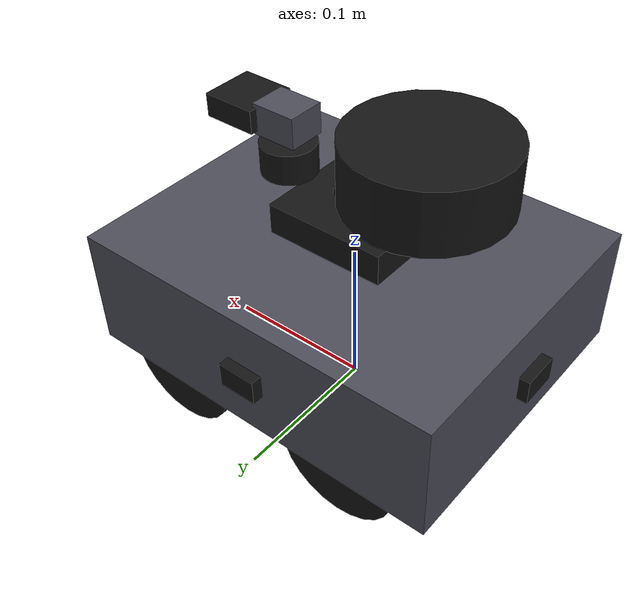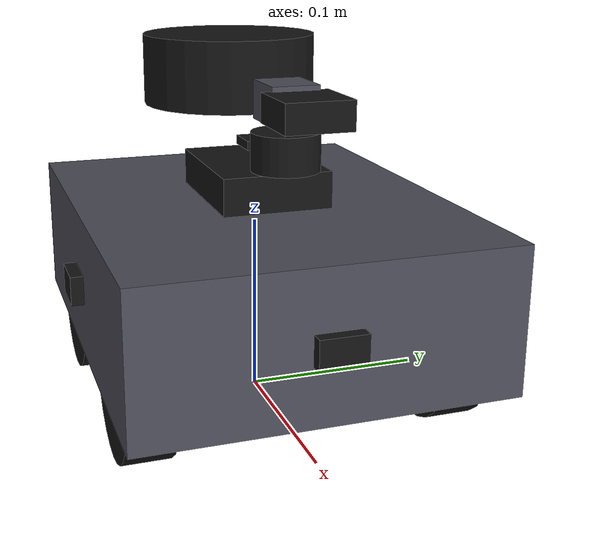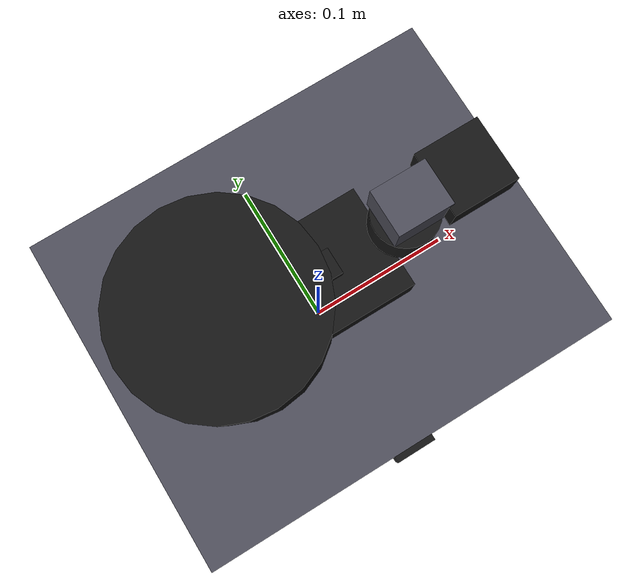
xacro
<?xml version="1.0"?>
<robot name="mecanum_chassis" xmlns:xacro="http://www.ros.org/wiki/xacro">
  <xacro:include
    filename="$(find air_ground_car_bringup)/urdf/car_base.urdf.xacro"/>

  <xacro:property name="wheel_radius" value="0.0395"/>
  <xacro:property name="wheel_width" value="0.026"/>
  <xacro:property name="wheel_mass" value="0.05"/>
  <xacro:property name="wheel_x" value="0.062"/>
  <xacro:property name="wheel_y" value="0.083"/>

  <!-- fdir_z is expressed in the wheel collision frame. After the wheel is
       rotated onto its axle, it selects a +/-45 degree ground traction line. -->
  <xacro:macro name="mecanum_wheel" params="name x y fdir_z">
    <link name="${name}_wheel">
      <inertial>
        <mass value="${wheel_mass}"/>
        <inertia
          ixx="${wheel_mass * (3.0 * wheel_radius * wheel_radius + wheel_width * wheel_width) / 12.0}"
          ixy="0"
          ixz="0"
          iyy="${wheel_mass * (3.0 * wheel_radius * wheel_radius + wheel_width * wheel_width) / 12.0}"
          iyz="0"
          izz="${wheel_mass * wheel_radius * wheel_radius / 2.0}"/>
      </inertial>
      <visual>
        <geometry>
          <cylinder radius="${wheel_radius}" length="${wheel_width}"/>
        </geometry>
        <material name="car_black"/>
      </visual>
      <collision>
        <geometry>
          <cylinder radius="${wheel_radius}" length="${wheel_width}"/>
        </geometry>
      </collision>
    </link>

    <joint name="${name}_wheel_joint" type="continuous">
      <parent link="base_link"/>
      <child link="${name}_wheel"/>
      <origin xyz="${x} ${y} ${wheel_radius}" rpy="${-pi / 2.0} 0 0"/>
      <axis xyz="0 0 1"/>
      <!-- 40 rad/s 覆盖供应资料 360±20 RPM 的空载公差上限（约 39.8 rad/s）。 -->
      <limit effort="5.0" velocity="40.0"/>
      <dynamics damping="0.02" friction="0.0"/>
    </joint>

    <transmission name="${name}_wheel_transmission">
      <type>transmission_interface/SimpleTransmission</type>
      <joint name="${name}_wheel_joint">
        <hardwareInterface>hardware_interface/VelocityJointInterface</hardwareInterface>
      </joint>
      <actuator name="${name}_wheel_motor">
        <hardwareInterface>hardware_interface/VelocityJointInterface</hardwareInterface>
        <mechanicalReduction>1</mechanicalReduction>
      </actuator>
    </transmission>

    <gazebo reference="${name}_wheel">
      <material>Gazebo/Black</material>
      <mu1>0.2</mu1>
      <mu2>0.01</mu2>
      <fdir1>0.70710678 0 ${fdir_z * 0.70710678}</fdir1>
      <kp>1000000</kp>
      <kd>10</kd>
    </gazebo>
  </xacro:macro>

  <xacro:mecanum_wheel name="front_left"
    x="${wheel_x}" y="${wheel_y}" fdir_z="1"/>
  <xacro:mecanum_wheel name="front_right"
    x="${wheel_x}" y="${-wheel_y}" fdir_z="-1"/>
  <xacro:mecanum_wheel name="rear_left"
    x="${-wheel_x}" y="${wheel_y}" fdir_z="-1"/>
  <xacro:mecanum_wheel name="rear_right"
    x="${-wheel_x}" y="${-wheel_y}" fdir_z="1"/>

  <gazebo>
    <plugin name="mecanum_planar_drive"
            filename="libmecanum_planar_drive_plugin.so">
      <robotNamespace>/car</robotNamespace>
      <commandTopic>mecanum_cmd_vel</commandTopic>
      <cmdTimeout>0.5</cmdTimeout>
    </plugin>
  </gazebo>
</robot>

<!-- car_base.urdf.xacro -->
<robot name="car_base" xmlns:xacro="http://www.ros.org/wiki/xacro">
  <xacro:include
    filename="$(find air_ground_car_bringup)/urdf/car_sensors.urdf.xacro"/>

  <xacro:property name="body_length" value="0.25"/>
  <xacro:property name="body_width" value="0.20"/>
  <xacro:property name="body_height" value="0.08"/>
  <xacro:property name="body_center_z" value="0.073"/>
  <xacro:property name="body_mass" value="2.5"/>

  <material name="car_gray">
    <color rgba="0.30 0.30 0.35 1.0"/>
  </material>
  <material name="car_black">
    <color rgba="0.08 0.08 0.08 1.0"/>
  </material>

  <!-- The model origin lies on the ground below the chassis centre. -->
  <link name="base_link">
    <inertial>
      <origin xyz="0 0 ${body_center_z}" rpy="0 0 0"/>
      <mass value="${body_mass}"/>
      <inertia
        ixx="${body_mass * (body_width * body_width + body_height * body_height) / 12.0}"
        ixy="0"
        ixz="0"
        iyy="${body_mass * (body_length * body_length + body_height * body_height) / 12.0}"
        iyz="0"
        izz="${body_mass * (body_length * body_length + body_width * body_width) / 12.0}"/>
    </inertial>
    <visual>
      <origin xyz="0 0 ${body_center_z}" rpy="0 0 0"/>
      <geometry>
        <box size="${body_length} ${body_width} ${body_height}"/>
      </geometry>
      <material name="car_gray"/>
    </visual>
    <collision>
      <origin xyz="0 0 ${body_center_z}" rpy="0 0 0"/>
      <geometry>
        <box size="${body_length} ${body_width} ${body_height}"/>
      </geometry>
    </collision>
  </link>

  <link name="sensor_mount">
    <inertial>
      <mass value="0.1"/>
      <inertia ixx="0.000033" ixy="0" ixz="0"
               iyy="0.000057" iyz="0" izz="0.000083"/>
    </inertial>
    <visual>
      <geometry>
        <box size="0.08 0.06 0.02"/>
      </geometry>
      <material name="car_black"/>
    </visual>
  </link>
  <joint name="sensor_mount_joint" type="fixed">
    <parent link="base_link"/>
    <child link="sensor_mount"/>
    <origin xyz="0 0 0.125" rpy="0 0 0"/>
  </joint>

  <gazebo reference="base_link">
    <material>Gazebo/DarkGrey</material>
  </gazebo>
  <gazebo reference="sensor_mount">
    <material>Gazebo/Black</material>
  </gazebo>

  <xacro:car_sensor_suite
    base_link="base_link" mount_link="sensor_mount"/>

  <gazebo>
    <plugin name="gazebo_ros_control" filename="libgazebo_ros_control.so">
      <robotNamespace>/car</robotNamespace>
      <robotParam>/robot_description</robotParam>
    </plugin>
  </gazebo>
</robot>

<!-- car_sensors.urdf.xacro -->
<robot xmlns:xacro="http://www.ros.org/wiki/xacro">
  <xacro:macro name="car_sensor_suite" params="base_link mount_link">
    <!-- Two-axis OpenMV gimbal. -->
    <link name="gimbal_pan_link">
      <inertial>
        <mass value="0.03"/>
        <inertia ixx="0.000008" ixy="0" ixz="0"
                 iyy="0.000008" iyz="0" izz="0.000012"/>
      </inertial>
      <visual>
        <geometry>
          <cylinder radius="0.018" length="0.020"/>
        </geometry>
        <material name="car_black"/>
      </visual>
    </link>
    <joint name="gimbal_pan_joint" type="revolute">
      <parent link="${mount_link}"/>
      <child link="gimbal_pan_link"/>
      <origin xyz="0.05 0 0.025" rpy="0 0 0"/>
      <axis xyz="0 0 1"/>
      <limit lower="${-pi / 2.0}" upper="${pi / 2.0}"
             effort="0.5" velocity="3.0"/>
      <dynamics damping="0.02" friction="0.0"/>
    </joint>

    <link name="gimbal_tilt_link">
      <inertial>
        <mass value="0.02"/>
        <inertia ixx="0.000004" ixy="0" ixz="0"
                 iyy="0.000006" iyz="0" izz="0.000006"/>
      </inertial>
      <visual>
        <geometry>
          <box size="0.030 0.025 0.020"/>
        </geometry>
        <material name="car_gray"/>
      </visual>
    </link>
    <joint name="gimbal_tilt_joint" type="revolute">
      <parent link="gimbal_pan_link"/>
      <child link="gimbal_tilt_link"/>
      <origin xyz="0 0 0.025" rpy="0 0 0"/>
      <axis xyz="0 1 0"/>
      <limit lower="${-pi / 4.0}" upper="${pi / 4.0}"
             effort="0.3" velocity="2.0"/>
      <dynamics damping="0.02" friction="0.0"/>
    </joint>

    <link name="openmv_camera_link">
      <inertial>
        <mass value="0.02"/>
        <inertia ixx="0.000004" ixy="0" ixz="0"
                 iyy="0.000004" iyz="0" izz="0.000006"/>
      </inertial>
      <visual>
        <geometry>
          <box size="0.035 0.035 0.015"/>
        </geometry>
        <material name="car_black"/>
      </visual>
    </link>
    <joint name="openmv_camera_joint" type="fixed">
      <parent link="gimbal_tilt_link"/>
      <child link="openmv_camera_link"/>
      <origin xyz="0.030 0 0" rpy="0 0 0"/>
    </joint>

    <link name="openmv_camera_optical_link"/>
    <joint name="openmv_camera_optical_joint" type="fixed">
      <parent link="openmv_camera_link"/>
      <child link="openmv_camera_optical_link"/>
      <origin xyz="0 0 0" rpy="${-pi / 2.0} 0 ${-pi / 2.0}"/>
    </joint>

    <transmission name="gimbal_pan_transmission">
      <type>transmission_interface/SimpleTransmission</type>
      <joint name="gimbal_pan_joint">
        <hardwareInterface>hardware_interface/PositionJointInterface</hardwareInterface>
      </joint>
      <actuator name="gimbal_pan_motor">
        <hardwareInterface>hardware_interface/PositionJointInterface</hardwareInterface>
        <mechanicalReduction>1</mechanicalReduction>
      </actuator>
    </transmission>
    <transmission name="gimbal_tilt_transmission">
      <type>transmission_interface/SimpleTransmission</type>
      <joint name="gimbal_tilt_joint">
        <hardwareInterface>hardware_interface/PositionJointInterface</hardwareInterface>
      </joint>
      <actuator name="gimbal_tilt_motor">
        <hardwareInterface>hardware_interface/PositionJointInterface</hardwareInterface>
        <mechanicalReduction>1</mechanicalReduction>
      </actuator>
    </transmission>

    <link name="lidar_link">
      <inertial>
        <mass value="0.17"/>
        <inertia ixx="0.000115" ixy="0" ixz="0"
                 iyy="0.000115" iyz="0" izz="0.000213"/>
      </inertial>
      <visual>
        <geometry>
          <cylinder radius="0.05" length="0.04"/>
        </geometry>
        <material name="car_black"/>
      </visual>
    </link>
    <joint name="lidar_joint" type="fixed">
      <parent link="${mount_link}"/>
      <child link="lidar_link"/>
      <origin xyz="-0.05 0 0.055" rpy="0 0 0"/>
    </joint>

    <xacro:macro name="ultrasonic_mount" params="name x y yaw">
      <link name="ultrasonic_${name}_link">
        <inertial>
          <mass value="0.005"/>
          <inertia ixx="0.000001" ixy="0" ixz="0"
                   iyy="0.000001" iyz="0" izz="0.000001"/>
        </inertial>
        <visual>
          <geometry>
            <box size="0.012 0.025 0.016"/>
          </geometry>
          <material name="car_black"/>
        </visual>
      </link>
      <joint name="ultrasonic_${name}_joint" type="fixed">
        <parent link="${base_link}"/>
        <child link="ultrasonic_${name}_link"/>
        <origin xyz="${x} ${y} 0.073" rpy="0 0 ${yaw}"/>
      </joint>
    </xacro:macro>

    <xacro:ultrasonic_mount name="front" x="0.126" y="0" yaw="0"/>
    <xacro:ultrasonic_mount name="rear" x="-0.126" y="0" yaw="${pi}"/>
    <xacro:ultrasonic_mount name="left" x="0" y="0.101" yaw="${pi / 2.0}"/>
    <xacro:ultrasonic_mount name="right" x="0" y="-0.101" yaw="${-pi / 2.0}"/>

    <link name="imu_link">
      <inertial>
        <mass value="0.01"/>
        <inertia ixx="0.000001" ixy="0" ixz="0"
                 iyy="0.000001" iyz="0" izz="0.000001"/>
      </inertial>
      <visual>
        <geometry>
          <box size="0.020 0.015 0.005"/>
        </geometry>
        <material name="car_black"/>
      </visual>
    </link>
    <joint name="imu_joint" type="fixed">
      <parent link="${mount_link}"/>
      <child link="imu_link"/>
      <origin xyz="0 0 0.020" rpy="0 0 0"/>
    </joint>

    <gazebo reference="gimbal_pan_link">
      <material>Gazebo/Black</material>
    </gazebo>
    <gazebo reference="gimbal_tilt_link">
      <material>Gazebo/Grey</material>
    </gazebo>
    <gazebo reference="openmv_camera_link">
      <material>Gazebo/Black</material>
      <sensor name="openmv_camera" type="camera">
        <always_on>true</always_on>
        <visualize>false</visualize>
        <update_rate>10.0</update_rate>
        <camera>
          <horizontal_fov>1.134464</horizontal_fov>
          <image>
            <width>320</width>
            <height>240</height>
            <format>R8G8B8</format>
          </image>
          <clip>
            <near>0.05</near>
            <far>30.0</far>
          </clip>
          <noise>
            <type>gaussian</type>
            <mean>0.0</mean>
            <stddev>0.007</stddev>
          </noise>
        </camera>
        <plugin name="openmv_camera_plugin"
                filename="libgazebo_ros_camera.so">
          <robotNamespace>/car</robotNamespace>
          <alwaysOn>true</alwaysOn>
          <updateRate>0.0</updateRate>
          <cameraName>openmv</cameraName>
          <imageTopicName>image_raw</imageTopicName>
          <cameraInfoTopicName>camera_info</cameraInfoTopicName>
          <frameName>openmv_camera_optical_link</frameName>
          <hackBaseline>0.0</hackBaseline>
          <distortionK1>0.0</distortionK1>
          <distortionK2>0.0</distortionK2>
          <distortionK3>0.0</distortionK3>
          <distortionT1>0.0</distortionT1>
          <distortionT2>0.0</distortionT2>
        </plugin>
      </sensor>
    </gazebo>

    <gazebo reference="lidar_link">
      <material>Gazebo/Black</material>
      <sensor name="lidar_2d" type="ray">
        <always_on>true</always_on>
        <visualize>false</visualize>
        <update_rate>10.0</update_rate>
        <ray>
          <scan>
            <horizontal>
              <samples>360</samples>
              <resolution>1</resolution>
              <min_angle>${-pi}</min_angle>
              <max_angle>${pi}</max_angle>
            </horizontal>
          </scan>
          <range>
            <min>0.15</min>
            <max>12.0</max>
            <resolution>0.01</resolution>
          </range>
          <noise>
            <type>gaussian</type>
            <mean>0.0</mean>
            <stddev>0.015</stddev>
          </noise>
        </ray>
        <plugin name="lidar_plugin" filename="libgazebo_ros_laser.so">
          <robotNamespace>/car</robotNamespace>
          <alwaysOn>true</alwaysOn>
          <updateRate>0.0</updateRate>
          <topicName>scan</topicName>
          <frameName>lidar_link</frameName>
          <gaussianNoise>0.0</gaussianNoise>
        </plugin>
      </sensor>
    </gazebo>

    <xacro:macro name="ultrasonic_plugin" params="name">
      <gazebo reference="ultrasonic_${name}_link">
        <material>Gazebo/Black</material>
        <sensor name="ultrasonic_${name}" type="ray">
          <always_on>true</always_on>
          <visualize>false</visualize>
          <update_rate>25.0</update_rate>
          <ray>
            <scan>
              <horizontal>
                <samples>1</samples>
                <resolution>1</resolution>
                <min_angle>0</min_angle>
                <max_angle>0</max_angle>
              </horizontal>
            </scan>
            <range>
              <min>0.02</min>
              <max>4.0</max>
              <resolution>0.003</resolution>
            </range>
            <noise>
              <type>gaussian</type>
              <mean>0.0</mean>
              <stddev>0.003</stddev>
            </noise>
          </ray>
          <plugin name="ultrasonic_${name}_plugin"
                  filename="libgazebo_ros_laser.so">
            <robotNamespace>/car</robotNamespace>
            <alwaysOn>true</alwaysOn>
            <updateRate>0.0</updateRate>
            <topicName>ultrasonic/${name}</topicName>
            <frameName>ultrasonic_${name}_link</frameName>
            <gaussianNoise>0.0</gaussianNoise>
          </plugin>
        </sensor>
      </gazebo>
    </xacro:macro>

    <xacro:ultrasonic_plugin name="front"/>
    <xacro:ultrasonic_plugin name="rear"/>
    <xacro:ultrasonic_plugin name="left"/>
    <xacro:ultrasonic_plugin name="right"/>

    <gazebo reference="imu_link">
      <material>Gazebo/Black</material>
      <sensor name="car_imu" type="imu">
        <always_on>true</always_on>
        <visualize>false</visualize>
        <update_rate>30.0</update_rate>
        <imu>
          <angular_velocity>
            <x>
              <noise type="gaussian">
                <mean>0.0</mean>
                <stddev>0.0005</stddev>
              </noise>
            </x>
            <y>
              <noise type="gaussian">
                <mean>0.0</mean>
                <stddev>0.0005</stddev>
              </noise>
            </y>
            <z>
              <noise type="gaussian">
                <mean>0.0</mean>
                <stddev>0.0005</stddev>
              </noise>
            </z>
          </angular_velocity>
          <linear_acceleration>
            <x>
              <noise type="gaussian">
                <mean>0.0</mean>
                <stddev>0.001</stddev>
              </noise>
            </x>
            <y>
              <noise type="gaussian">
                <mean>0.0</mean>
                <stddev>0.001</stddev>
              </noise>
            </y>
            <z>
              <noise type="gaussian">
                <mean>0.0</mean>
                <stddev>0.001</stddev>
              </noise>
            </z>
          </linear_acceleration>
        </imu>
        <plugin name="car_imu_plugin"
                filename="libgazebo_ros_imu_sensor.so">
          <robotNamespace>/car</robotNamespace>
          <alwaysOn>true</alwaysOn>
          <updateRate>0.0</updateRate>
          <topicName>imu/data</topicName>
          <bodyName>imu_link</bodyName>
          <frameName>imu_link</frameName>
          <gaussianNoise>0.0</gaussianNoise>
        </plugin>
      </sensor>
    </gazebo>
  </xacro:macro>
</robot>
